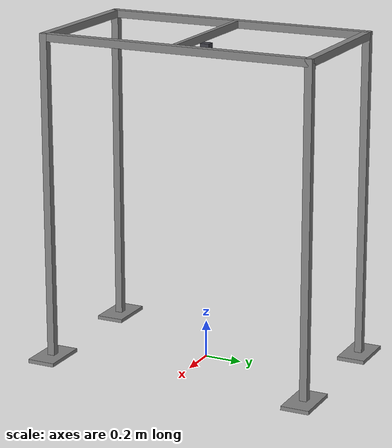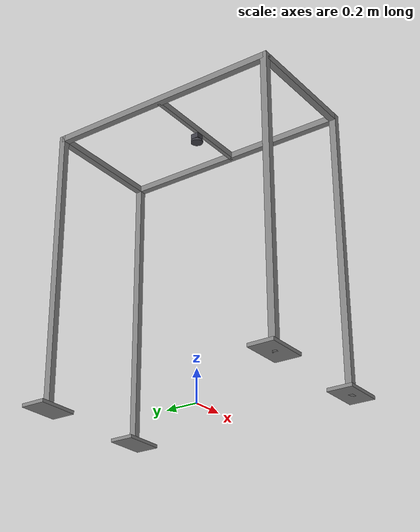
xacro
<?xml version="1.0"?>
<robot name="gantry_v2" xmlns:xacro="http://ros.org/wiki/xacro">

  <xacro:arg name="width_y" default="1.45"/>
  <xacro:arg name="depth_x" default="0.75"/>
  <xacro:arg name="height" default="1.75"/>
  <xacro:arg name="beam" default="0.04"/>

  <xacro:property name="wy" value="$(arg width_y)"/>
  <xacro:property name="dx" value="$(arg depth_x)"/>
  <xacro:property name="h" value="$(arg height)"/>
  <xacro:property name="b" value="$(arg beam)"/>
  <!-- Half-extents for placement -->
  <xacro:property name="hx" value="${dx/2}"/>
  <xacro:property name="hy" value="${wy/2}"/>

  <!-- Materials: low-saturation demo palette -->
  <material name="gantry_frame_gray">
    <color rgba="0.52 0.52 0.52 1"/>
  </material>
  <material name="gantry_suspension_dark">
    <color rgba="0.25 0.25 0.28 1"/>
  </material>

  <!-- Root link: origin at bottom center of gantry frame -->
  <link name="gantry_v2_base">
    <inertial>
      <mass value="150.0"/>
      <inertia ixx="80.0" ixy="0" ixz="0" iyy="80.0" iyz="0" izz="80.0"/>
      <origin xyz="0 0 ${h/2}" rpy="0 0 0"/>
    </inertial>

    <!-- ===== Four Corner Pillars ===== -->
    <!-- Front-Left -->
    <visual name="pillar_fl">
      <origin xyz="${-hx} ${-hy} ${h/2}" rpy="0 0 0"/>
      <geometry><box size="${b} ${b} ${h}"/></geometry>
      <material name="gantry_frame_gray"/>
    </visual>
    <collision name="pillar_fl_col">
      <origin xyz="${-hx} ${-hy} ${h/2}" rpy="0 0 0"/>
      <geometry><box size="${b} ${b} ${h}"/></geometry>
    </collision>

    <!-- Front-Right -->
    <visual name="pillar_fr">
      <origin xyz="${-hx} ${hy} ${h/2}" rpy="0 0 0"/>
      <geometry><box size="${b} ${b} ${h}"/></geometry>
      <material name="gantry_frame_gray"/>
    </visual>
    <collision name="pillar_fr_col">
      <origin xyz="${-hx} ${hy} ${h/2}" rpy="0 0 0"/>
      <geometry><box size="${b} ${b} ${h}"/></geometry>
    </collision>

    <!-- Rear-Left -->
    <visual name="pillar_rl">
      <origin xyz="${hx} ${-hy} ${h/2}" rpy="0 0 0"/>
      <geometry><box size="${b} ${b} ${h}"/></geometry>
      <material name="gantry_frame_gray"/>
    </visual>
    <collision name="pillar_rl_col">
      <origin xyz="${hx} ${-hy} ${h/2}" rpy="0 0 0"/>
      <geometry><box size="${b} ${b} ${h}"/></geometry>
    </collision>

    <!-- Rear-Right -->
    <visual name="pillar_rr">
      <origin xyz="${hx} ${hy} ${h/2}" rpy="0 0 0"/>
      <geometry><box size="${b} ${b} ${h}"/></geometry>
      <material name="gantry_frame_gray"/>
    </visual>
    <collision name="pillar_rr_col">
      <origin xyz="${hx} ${hy} ${h/2}" rpy="0 0 0"/>
      <geometry><box size="${b} ${b} ${h}"/></geometry>
    </collision>

    <!-- ===== Top Beams: Closed Rectangle ===== -->
    <!--
      Beam naming: connects FL↔FR (front), FL↔RL (left), FR↔RR (right), RL↔RR (rear).
      Front/Rear beams run along Y; Left/Right beams run along X.
    -->

    <!-- Front beam: FL ↔ FR  (along Y at X=-hx) -->
    <visual name="beam_front">
      <origin xyz="${-hx} 0 ${h - b/2}" rpy="0 0 0"/>
      <geometry><box size="${b} ${wy} ${b}"/></geometry>
      <material name="gantry_frame_gray"/>
    </visual>
    <collision name="beam_front_col">
      <origin xyz="${-hx} 0 ${h - b/2}" rpy="0 0 0"/>
      <geometry><box size="${b} ${wy} ${b}"/></geometry>
    </collision>

    <!-- Rear beam: RL ↔ RR  (along Y at X=+hx) -->
    <visual name="beam_rear">
      <origin xyz="${hx} 0 ${h - b/2}" rpy="0 0 0"/>
      <geometry><box size="${b} ${wy} ${b}"/></geometry>
      <material name="gantry_frame_gray"/>
    </visual>
    <collision name="beam_rear_col">
      <origin xyz="${hx} 0 ${h - b/2}" rpy="0 0 0"/>
      <geometry><box size="${b} ${wy} ${b}"/></geometry>
    </collision>

    <!-- Left beam: FL ↔ RL  (along X at Y=-hy) -->
    <visual name="beam_left">
      <origin xyz="0 ${-hy} ${h - b/2}" rpy="0 0 0"/>
      <geometry><box size="${dx} ${b} ${b}"/></geometry>
      <material name="gantry_frame_gray"/>
    </visual>
    <collision name="beam_left_col">
      <origin xyz="0 ${-hy} ${h - b/2}" rpy="0 0 0"/>
      <geometry><box size="${dx} ${b} ${b}"/></geometry>
    </collision>

    <!-- Right beam: FR ↔ RR  (along X at Y=+hy) -->
    <visual name="beam_right">
      <origin xyz="0 ${hy} ${h - b/2}" rpy="0 0 0"/>
      <geometry><box size="${dx} ${b} ${b}"/></geometry>
      <material name="gantry_frame_gray"/>
    </visual>
    <collision name="beam_right_col">
      <origin xyz="0 ${hy} ${h - b/2}" rpy="0 0 0"/>
      <geometry><box size="${dx} ${b} ${b}"/></geometry>
    </collision>

    <!-- ===== Center Cross-Beam (X-direction, at Y=0) ===== -->
    <visual name="beam_center">
      <origin xyz="0 0 ${h - b/2}" rpy="0 0 0"/>
      <geometry><box size="${dx} ${b*0.6} ${b}"/></geometry>
      <material name="gantry_frame_gray"/>
    </visual>
    <collision name="beam_center_col">
      <origin xyz="0 0 ${h - b/2}" rpy="0 0 0"/>
      <geometry><box size="${dx} ${b*0.6} ${b}"/></geometry>
    </collision>

    <!-- ===== Center Suspension Eyelet (hanging point) ===== -->
    <!-- Small bracket hanging below center cross-beam -->
    <visual name="eyelet_bracket">
      <origin xyz="0 0 ${h - b*1.8}" rpy="0 0 0"/>
      <geometry><box size="${b*1.2} ${b*1.2} ${b*0.8}"/></geometry>
      <material name="gantry_suspension_dark"/>
    </visual>
    <!-- Ring/eyelet for wire attachment -->
    <visual name="eyelet_ring">
      <origin xyz="0 0 ${h - b*2.6}" rpy="0 0 0"/>
      <geometry><cylinder radius="${b*0.9}" length="${b*0.3}"/></geometry>
      <material name="gantry_suspension_dark"/>
    </visual>

    <!-- ===== Base Plates (feet) ===== -->
    <visual name="foot_fl">
      <origin xyz="${-hx} ${-hy} 0.01" rpy="0 0 0"/>
      <geometry><box size="0.25 0.15 0.02"/></geometry>
      <material name="gantry_frame_gray"/>
    </visual>
    <visual name="foot_fr">
      <origin xyz="${-hx} ${hy} 0.01" rpy="0 0 0"/>
      <geometry><box size="0.25 0.15 0.02"/></geometry>
      <material name="gantry_frame_gray"/>
    </visual>
    <visual name="foot_rl">
      <origin xyz="${hx} ${-hy} 0.01" rpy="0 0 0"/>
      <geometry><box size="0.25 0.15 0.02"/></geometry>
      <material name="gantry_frame_gray"/>
    </visual>
    <visual name="foot_rr">
      <origin xyz="${hx} ${hy} 0.01" rpy="0 0 0"/>
      <geometry><box size="0.25 0.15 0.02"/></geometry>
      <material name="gantry_frame_gray"/>
    </visual>
  </link>

  <gazebo><static>true</static></gazebo>
</robot>
